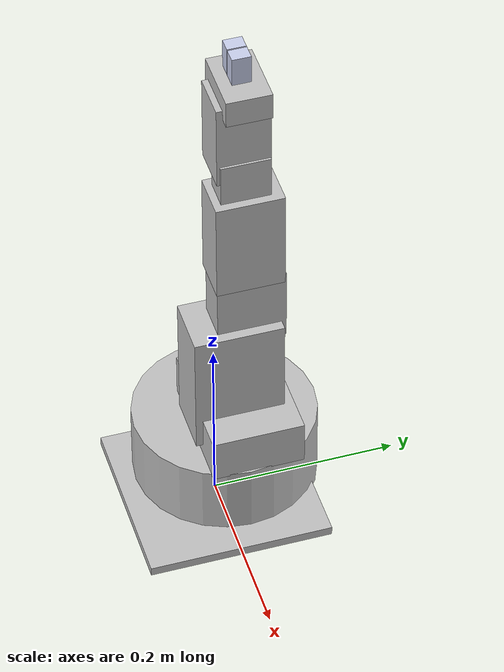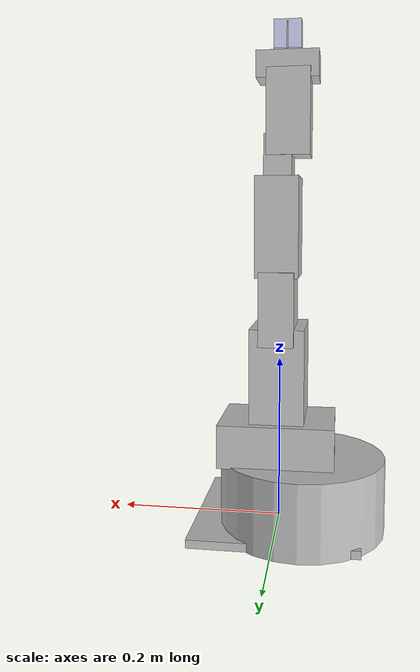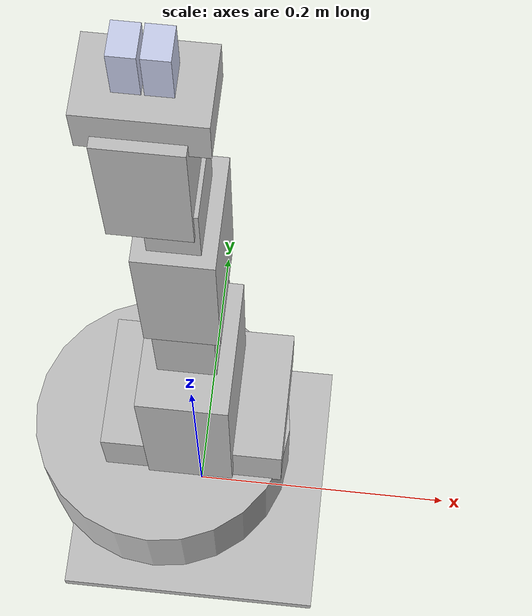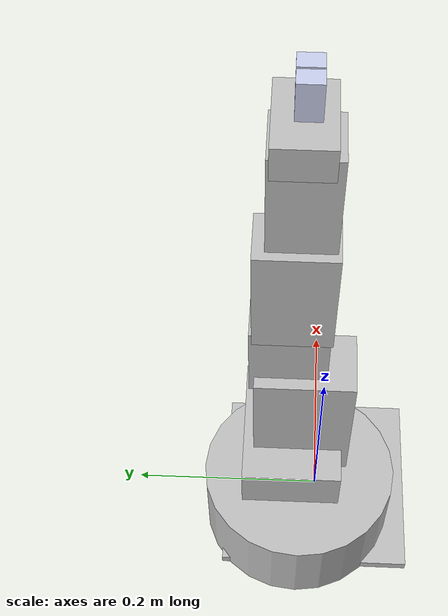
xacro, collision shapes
<?xml version="1.0"?>
<robot xmlns:xacro="http://ros.org/wiki/xacro" name="cyton_alpha_description">
	<xacro:include filename="$(find cyton_alpha_description)/urdf/cyton_alpha.structure.xacro" />
	<xacro:include filename="$(find cyton_alpha_description)/urdf/cyton_alpha.gazebo.xacro" />

	<xacro:cyton_alpha name="arm"/>
	<link name="base">
			<inertial>
				<origin
					xyz="0 0 0"
					rpy="0 0 0" />
				<mass value="10" />
				<inertia ixx="1.0" ixy="0.0" ixz="0.0" iyy="1.0" iyz="0.0" izz="1.0" />
			</inertial>
			<visual>
				<origin
					xyz="0 0 0"
					rpy="0 0 0" />
				<geometry>
					<box size="0.2 0.2 0"/>
				</geometry>
				<material
					name="">
					<color
						rgba="0.75294 0.75294 0.75294 1" />
				</material>
			</visual>
			<collision>
				<origin
					xyz="0 0 0"
					rpy="0 0 0" />
				<geometry>
					<box size="0.2 0.2 0.010"/>
				</geometry>
			</collision>
		</link>
	<joint name="base2cyton" type="fixed">
	<origin xyz="-0.1 0.1 0" rpy="0 0 0"/>
		<parent link="base"/>
		<child link="link0"/>
	</joint>

</robot>

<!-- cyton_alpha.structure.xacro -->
<robot xmlns:xacro="http://ros.org/wiki/xacro">

	<xacro:macro name="cyton_alpha" params="name">

		<link
			name="link0">
			<inertial>
				<origin
					xyz="0.093366 0.03803 0.065977"
					rpy="0 0 0" />
				<mass
					value="0.40583" />
				<inertia ixx="1.0" ixy="0.0" ixz="0.0" iyy="1.0" iyz="0.0" izz="1.0" />
			</inertial>
			<visual>
				<origin
					xyz="0 0 0"
					rpy="0 0 0" />
				<geometry>
					<mesh
						filename="package://cyton_alpha_description/meshes/link0.STL" />
				</geometry>
				<material
					name="">
					<color
						rgba="0.75294 0.75294 0.75294 1" />
				</material>
			</visual>
			<collision>
				<origin
					xyz="0.07 -0.08 0.04"
					rpy="0 0 0" />
				<geometry>
					<cylinder length="0.091" radius="0.1"/>
				</geometry>
			</collision>
		</link>

		<link
			name="link1">
			<inertial>
				<origin
					xyz="-0.0045279 0.015309 0.0058769"
					rpy="0 0 0" />
				<mass
					value="0.17897" />
				<inertia
					ixx="0.00040944"
					ixy="-1.2113E-05"
					ixz="-6.3351E-06"
					iyy="0.00049769"
					iyz="1.5436E-05"
					izz="0.00017854" />
			</inertial>
			<visual>
				<origin
					xyz="0 0 0"
					rpy="0 0 0" />
				<geometry>
					<mesh
						filename="package://cyton_alpha_description/meshes/link1.STL" />
				</geometry>
				<material
					name="">
					<color
						rgba="0.75294 0.75294 0.75294 1" />
				</material>
			</visual>
			<collision>
				<origin
					xyz="0 0.02475 0"
					rpy="0 0 0" />
				<geometry>
					<box size="0.136 0.051 0.10"/>
				</geometry>
			</collision>
		</link>

		<link
			name="link2">
			<inertial>
				<origin
					xyz="-0.0065594 0.081209 -2.1283E-10"
					rpy="0 0 0" />
				<mass
					value="0.17025" />
				<inertia
					ixx="0.00016239"
					ixy="2.4141E-05"
					ixz="1.9315E-12"
					iyy="0.00012941"
					iyz="-3.7242E-13"
					izz="0.00024238" />
			</inertial>
			<visual>
				<origin
					xyz="0 0 0"
					rpy="0 0 0" />
				<geometry>
					<mesh
						filename="package://cyton_alpha_description/meshes/link2.STL" />
				</geometry>
				<material
					name="">
					<color
						rgba="0.75294 0.75294 0.75294 1" />
				</material>
			</visual>
			<collision>
				<origin
					xyz="-0.00908 0.05314 -0.00054"
					rpy="0 0 0" />
				<geometry>
					<box size="0.097 0.146 0.064"/>
				</geometry>
			</collision>
		</link>

		<link
			name="link3">
			<inertial>
				<origin
					xyz="-0.0037056 0.037257 4.318E-06"
					rpy="0 0 0" />
				<mass
					value="0.074076" />
				<inertia
					ixx="4.9764E-05"
					ixy="-4.2562E-06"
					ixz="1.1853E-09"
					iyy="1.9187E-05"
					iyz="-5.6798E-09"
					izz="5.8759E-05" />
			</inertial>
			<visual>
				<origin
					xyz="0 0 0"
					rpy="0 0 0" />
				<geometry>
					<mesh
						filename="package://cyton_alpha_description/meshes/link3.STL" />
				</geometry>
				<material
					name="">
					<color
						rgba="0.75294 0.75294 0.75294 1" />
				</material>
			</visual>
			<collision>
				<origin
					xyz="-0.00063 0.04288 0.00005"
					rpy="0 0 0" />
				<geometry>
					<box size="0.074 0.086 0.041"/>
				</geometry>
			</collision>
		</link>

		<link
			name="link4">
			<inertial>
				<origin
					xyz="-0.00453034281205507 0.0720346348332056 -1.35437425163865E-09"
					rpy="0 0 0" />
				<mass
					value="0.0672668972309732" />
				<inertia
					ixx="4.67161199119564E-05"
					ixy="4.35195121344976E-06"
					ixz="2.6302026822635E-12"
					iyy="3.13979422559928E-05"
					iyz="-6.86584027007207E-13"
					izz="6.48051352457449E-05" />
			</inertial>
			<visual>
				<origin
					xyz="0 0 0"
					rpy="0 0 0" />
				<geometry>
					<mesh
						filename="package://cyton_alpha_description/meshes/link4.STL" />
				</geometry>
				<material
					name="">
					<color
						rgba="0.752941176470588 0.752941176470588 0.752941176470588 1" />
				</material>
			</visual>
			<collision>
				<origin
					xyz="-0.00286 0.06956 -0.00003"
					rpy="0 0 0" />
				<geometry>
					<box size="0.073 0.116 0.050"/>
				</geometry>
			</collision>
		</link>

		<link
			name="link5">
			<inertial>
				<origin
					xyz="0.00456829669603721 0.0474224526162388 -3.47375755178903E-06"
					rpy="0 0 0" />
				<mass
					value="0.051376442823963" />
				<inertia
					ixx="3.2737957509832E-05"
					ixy="3.31712748307281E-06"
					ixz="-1.90627017301039E-09"
					iyy="9.92504658091435E-06"
					iyz="-2.25609756305602E-09"
					izz="3.78510108258027E-05" />
			</inertial>
			<visual>
				<origin
					xyz="0 0 0"
					rpy="0 0 0" />
				<geometry>
					<mesh
						filename="package://cyton_alpha_description/meshes/link5.STL" />
				</geometry>
				<material
					name="">
					<color
						rgba="0.752941176470588 0.752941176470588 0.752941176470588 1" />
				</material>
			</visual>
			<collision>
				<origin
					xyz="0.00631 0.04307 0.00005"
					rpy="0 0 0" />
				<geometry>
					<box size="0.053 0.089 0.032"/>
				</geometry>
			</collision>
		</link>

		<link
			name="link6">
			<inertial>
				<origin
					xyz="-0.0052229 0.050156 0.0077539"
					rpy="0 0 0" />
				<mass
					value="0.045233" />
				<inertia
					ixx="2.1686E-05"
					ixy="-1.8794E-06"
					ixz="-1.7894E-09"
					iyy="1.2099E-05"
					iyz="1.1437E-09"
					izz="2.358E-05" />
			</inertial>
			<visual>
				<origin
					xyz="0 0 0"
					rpy="0 0 0" />
				<geometry>
					<mesh
						filename="package://cyton_alpha_description/meshes/link6.STL" />
				</geometry>
				<material
					name="">
					<color
						rgba="0.75294 0.75294 0.75294 1" />
				</material>
			</visual>
			<collision>
				<origin
					xyz="-0.01167 0.04240 0.00764"
					rpy="0 0 0" />
				<geometry>
					<box size="0.050 0.097 0.057"/>
				</geometry>
			</collision>
		</link>

		<link
			name="link7">
			<inertial>
				<origin
					xyz="-0.016212 0.037635 0.009234"
					rpy="0 0 0" />
				<mass
					value="0.04349" />
				<inertia
					ixx="1.1991E-05"
					ixy="-9.3011E-07"
					ixz="-1.5295E-06"
					iyy="1.7894E-05"
					iyz="1.1506E-06"
					izz="1.6777E-05" />
			</inertial>
			<visual>
				<origin
					xyz="0 0 0"
					rpy="0 0 0" />
				<geometry>
					<mesh
						filename="package://cyton_alpha_description/meshes/link7.STL" />
				</geometry>
				<material
					name="">
					<color
						rgba="0.75294 0.75294 0.75294 1" />
				</material>
			</visual>
			<collision>
				<origin
					xyz="-0.01032 0.02858 -0.00226"
					rpy="0 0 0" />
				<geometry>
					<box size="0.071 0.03 0.048"/>
				</geometry>
			</collision>
		</link>

		<link
			name="claw1">
			<inertial>
				<origin
					xyz="0.0052069 0.010995 1.4043E-05"
					rpy="0 0 0" />
				<mass
					value="0.0052092" />
				<inertia
					ixx="5.9848E-07"
					ixy="-4.9952E-08"
					ixz="-3.3858E-10"
					iyy="2.5868E-07"
					iyz="-1.3472E-10"
					izz="4.7294E-07" />
			</inertial>
			<visual>
				<origin
					xyz="0 0 0"
					rpy="0 0 0" />
				<geometry>
					<mesh
						filename="package://cyton_alpha_description/meshes/claw1.STL" />
				</geometry>
				<material
					name="">
					<color
						rgba="0.79216 0.81961 0.93333 1" />
				</material>
			</visual>
			<collision>
				<origin
					xyz="0.00833 0.00950 0"
					rpy="0 0 0" />
				<geometry>
					<box size="0.015 0.032 0.020"/>
				</geometry>
			</collision>
		</link>

		<link
			name="claw2">
			<inertial>
				<origin
					xyz="0.0053418 0.010995 -8.0075E-14"
					rpy="0 0 0" />
				<mass
					value="0.0052092" />
				<inertia
					ixx="5.9848E-07"
					ixy="-4.9952E-08"
					ixz="5.8306E-20"
					iyy="2.5868E-07"
					iyz="2.3368E-20"
					izz="4.7294E-07" />
			</inertial>
			<visual>
				<origin
					xyz="0 0 0"
					rpy="0 0 0" />
				<geometry>
					<mesh
						filename="package://cyton_alpha_description/meshes/claw2.STL" />
				</geometry>
				<material
					name="">
					<color
						rgba="0.79216 0.81961 0.93333 1" />
				</material>
			</visual>
			<collision>
				<origin
					xyz="0.00833 0.00950 0"
					rpy="0 0 0" />
				<geometry>
					<box size="0.015 0.032 0.020"/>
				</geometry>
			</collision>
		</link>

		<joint
			name="shoulder_base"
			type="revolute">
			<origin
				xyz="0.099 -0.071 0.0845"
				rpy="1.5708 -3.382E-20 -3.141" />
			<parent
				link="link0" />
			<child
				link="link1" />
			<axis

				xyz="0 -1 0" />
			<limit
				lower="-1.5708"
				upper="1.5708"
				effort="1000"
				velocity="6.2832" />
			<dynamics fricction="0" damping="0" />
		</joint>

		<joint
			name="shoulder_pitch"
			type="revolute">
			<origin
				xyz="0 0.0355 0"
				rpy="3.1416 -1.568 3.1416" />
			<parent
				link="link1" />
			<child
				link="link2" />
			<axis
				xyz="1 0 0" />
			<limit
				lower="-1.4835"
				upper="1.4835"
				effort="1000"
				velocity="6.2832" />
			<dynamics fricction="0" damping="0" />
		</joint>

		<joint
			name="shoulder_yaw"
			type="revolute">
			<origin
				xyz="0.008 0.1065 0"
				rpy="0 4.1059E-05 0" />
			<parent
				link="link2" />
			<child
				link="link3" />
			<axis
				xyz="0 -1 0" />
			<limit

				lower="-1.5708"
				upper="1.5708"
				effort="1000"
				velocity="6.2832" />
			<dynamics fricction="0" damping="0" />
		</joint>

		<joint
			name="elbow_pitch"
			type="revolute">
			<origin
				xyz="0 0.06745 0"
				rpy="0 -4.996E-14 0" />
			<parent
				link="link3" />
			<child
				link="link4" />
			<axis
				xyz="1 0 0" />
			<limit
				lower="-1.4835"
				upper="1.4835"

				effort="1000"
				velocity="6.2832" />
			<dynamics fricction="0" damping="0" />
		</joint>

		<joint
			name="wrist_roll"
			type="revolute">
			<origin
				xyz="0.0015 0.0875 0"
				rpy="3.1416 0.0004604 3.1416" />
			<parent
				link="link4" />
			<child
				link="link5" />
			<axis
				xyz="0 -1 0" />
			<limit
				lower="-1.5708"
				upper="1.5708"
				effort="1000"
				velocity="6.2832" />
			<dynamics fricction="0" damping="0" />
		</joint>

		<joint
			name="wrist_yaw"
			type="revolute">
			<origin
				xyz="0 0.06995 0"
				rpy="0 1.5708 0" />
			<parent
				link="link5" />
			<child
				link="link6" />
			<axis
				xyz="0 0 -1" />
			<limit
				lower="-1.1345"
				upper="1.1345"
				effort="1000"
				velocity="6.2832" />
			<dynamics fricction="0" damping="0" />
		</joint>

		<joint
			name="wrist_pitch"
			type="revolute">
			<origin
				xyz="0 0.06645 0.00775"
				rpy="0 -3.4333E-11 0" />
			<parent
				link="link6" />
			<child
				link="link7" />
			<axis
				xyz="-1 0 0" />
			<limit
				lower="-1.1781"
				upper="1.1781"
				effort="1000"
				velocity="6.2832" />
			<dynamics fricction="0" damping="0" />
		</joint>

		<joint
			name="claw_right"
			type="prismatic">
			<origin
				xyz="-0.0091826 0.0555 0"
				rpy="0 0.0026969 0" />
			<parent
				link="link7" />
			<child
				link="claw1" />
			<axis
				xyz="1 0 0.0026969" />
			<limit
				lower="0"
				upper="0.017"
				effort="1000"
				velocity="0.017" />
			<dynamics fricction="0" damping="0" />
		</joint>

		<joint
			name="claw_left"
			type="prismatic">
			<origin
				xyz="-0.0091826 0.0555 0"
				rpy="3.1416 4.6484E-13 3.1416" />
			<parent
				link="link7" />
			<child
				link="claw2" />
			<axis
				xyz="-1 0 0" />
			<limit
				lower="-0.017"
				upper="0"
				effort="1000"
				velocity="0.017" />
			<dynamics fricction="0" damping="0" />
		</joint>

		<transmission name="shoulder_base_trans">
			<type>transmission_interface/SimpleTransmission</type>
			<joint name="shoulder_base"/>
			<actuator name="shoulder_base_motor">
				<hardwareInterface>EffortJointInterface</hardwareInterface>
				<mechanicalReduction>1</mechanicalReduction>
			</actuator>
		</transmission>

		<transmission name="shoulder_pitch_trans">
			<type>transmission_interface/SimpleTransmission</type>
			<joint name="shoulder_pitch"/>
			<actuator name="shoulder_pitch_motor">
				<hardwareInterface>EffortJointInterface</hardwareInterface>
				<mechanicalReduction>1</mechanicalReduction>
			</actuator>
		</transmission>

		<transmission name="shoulder_yaw_trans">
			<type>transmission_interface/SimpleTransmission</type>
			<joint name="shoulder_yaw"/>
			<actuator name="shoulder_yaw_motor">
				<hardwareInterface>EffortJointInterface</hardwareInterface>
				<mechanicalReduction>1</mechanicalReduction>
			</actuator>
		</transmission>

		<transmission name="elbow_pitch_trans">
			<type>transmission_interface/SimpleTransmission</type>
			<joint name="elbow_pitch"/>
			<actuator name="elbow_pitch_motor">
				<hardwareInterface>EffortJointInterface</hardwareInterface>
				<mechanicalReduction>1</mechanicalReduction>
			</actuator>
		</transmission>

		<transmission name="wrist_roll_trans">
			<type>transmission_interface/SimpleTransmission</type>
			<joint name="wrist_roll"/>
			<actuator name="wrist_roll_motor">
				<hardwareInterface>EffortJointInterface</hardwareInterface>
				<mechanicalReduction>1</mechanicalReduction>
			</actuator>
		</transmission>

		<transmission name="wrist_yaw_trans">
			<type>transmission_interface/SimpleTransmission</type>
			<joint name="wrist_yaw"/>
			<actuator name="wrist_yaw_motor">
				<hardwareInterface>EffortJointInterface</hardwareInterface>
				<mechanicalReduction>1</mechanicalReduction>
			</actuator>
		</transmission>

		<transmission name="wrist_pitch_trans">
			<type>transmission_interface/SimpleTransmission</type>
			<joint name="wrist_pitch"/>
			<actuator name="wrist_pitch_motor">
				<hardwareInterface>EffortJointInterface</hardwareInterface>
				<mechanicalReduction>1</mechanicalReduction>
			</actuator>
		</transmission>

		<transmission name="claw_left_trans">
			<type>transmission_interface/SimpleTransmission</type>
			<joint name="claw_left"/>
			<actuator name="claw_left_motor">
				<hardwareInterface>EffortJointInterface</hardwareInterface>
				<mechanicalReduction>1</mechanicalReduction>
			</actuator>
		</transmission>

		<transmission name="claw_right_trans">
			<type>transmission_interface/SimpleTransmission</type>
			<joint name="claw_right"/>
			<actuator name="claw_right_motor">
				<hardwareInterface>EffortJointInterface</hardwareInterface>
				<mechanicalReduction>1</mechanicalReduction>
			</actuator>
		</transmission>

	</xacro:macro>

</robot>
